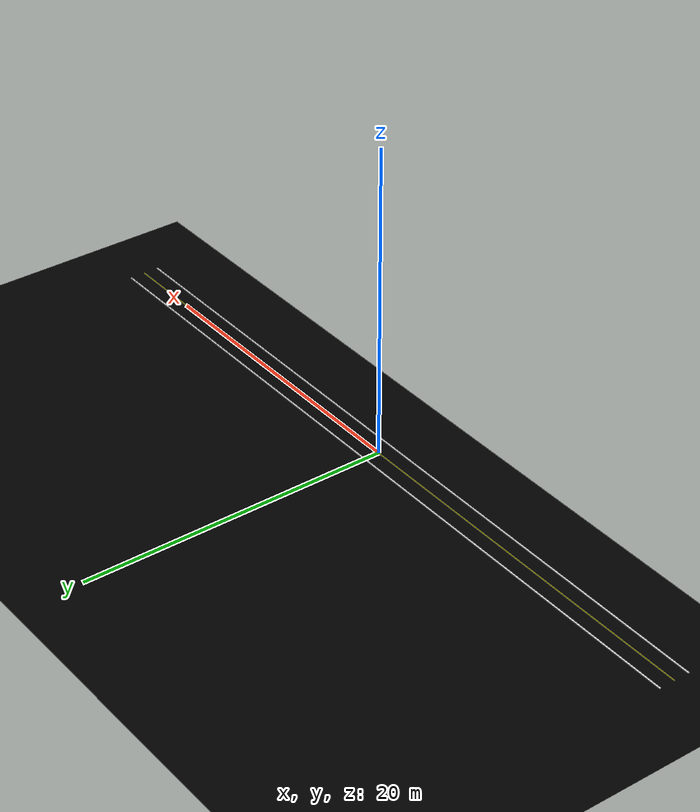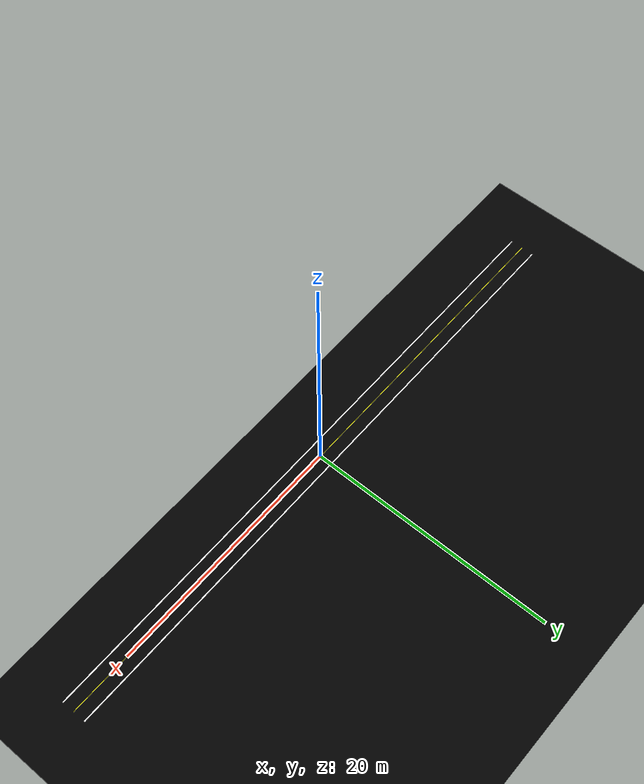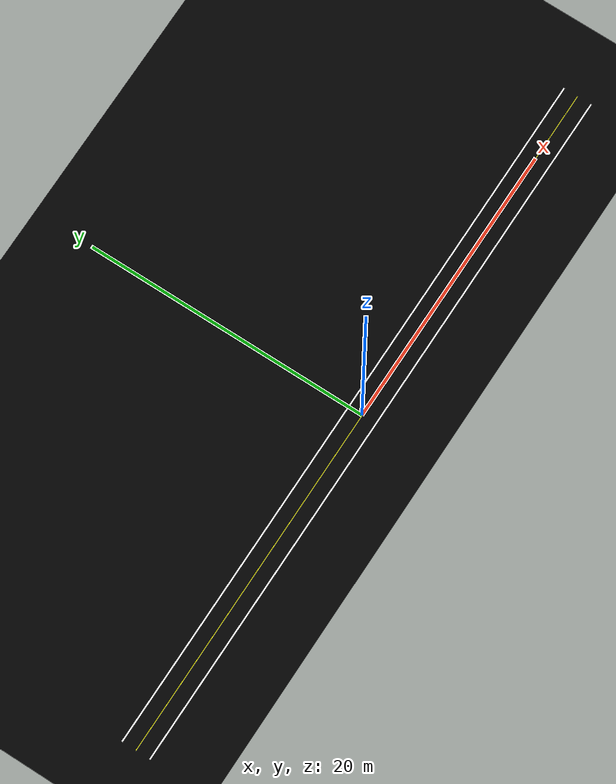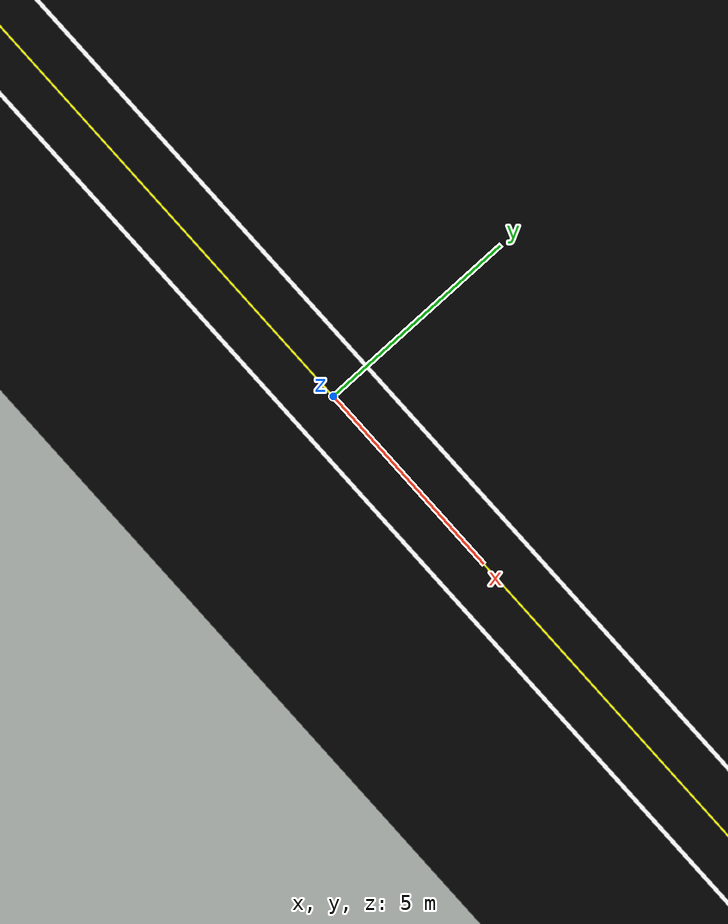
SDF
<?xml version="1.0" ?>
<sdf version="1.6">
  <world name="simple_lane_world">
    <!-- 1. Ambient light and sunlight -->
    <include>
      <uri>model://sun</uri>
    </include>

    <!-- 2. Black ground -->
    <model name="ground_black">
      <static>true</static>
      <link name="link">
        <pose>0 0 0 0 0 0</pose>
        <collision name="collision">
          <geometry>
            <plane>
              <normal>0 0 1</normal>
              <size>100 100</size>
            </plane>
          </geometry>
        </collision>
        <visual name="visual">
          <geometry>
            <plane>
              <normal>0 0 1</normal>
              <size>100 100</size>
            </plane>
          </geometry>
          <material>
            <ambient>0 0 0 1</ambient>
            <diffuse>0 0 0 1</diffuse>
          </material>
        </visual>
      </link>
    </model>

    <!-- 3. Yellow thin line in the middle -->
    <model name="center_yellow_line">
      <static>true</static>
      <link name="link">
        <pose>0 0 0.01 0 0 0</pose>
        <collision name="collision">
          <geometry>
            <box>
              <size>50 0.05 0.02</size> <!-- length 50m，width 0.05m，height 0.02m -->
            </box>
          </geometry>
        </collision>
        <visual name="visual">
          <geometry>
            <box>
              <size>50 0.05 0.02</size>
            </box>
          </geometry>
          <material>
            <ambient>1 1 0 1</ambient>     <!-- yellow -->
            <diffuse>1 1 0 1</diffuse>
          </material>
        </visual>
      </link>
    </model>

    <!-- 4. Left and right white lane lines -->
    <model name="left_white_line">
      <static>true</static>
      <link name="link">
        <pose>0 1 0.01 0 0 0</pose>
        <visual name="visual">
          <geometry>
            <box>
              <size>50 0.1 0.02</size>
            </box>
          </geometry>
          <material>
            <ambient>1 1 1 1</ambient>   <!-- white -->
            <diffuse>1 1 1 1</diffuse>
          </material>
        </visual>
      </link>
    </model>
    <model name="right_white_line">
      <static>true</static>
      <link name="link">
        <pose>0 -1 0.01 0 0 0</pose>
        <visual name="visual">
          <geometry>
            <box>
              <size>50 0.1 0.02</size>
            </box>
          </geometry>
          <material>
            <ambient>1 1 1 1</ambient>
            <diffuse>1 1 1 1</diffuse>
          </material>
        </visual>
      </link>
    </model>

  </world>
</sdf>
